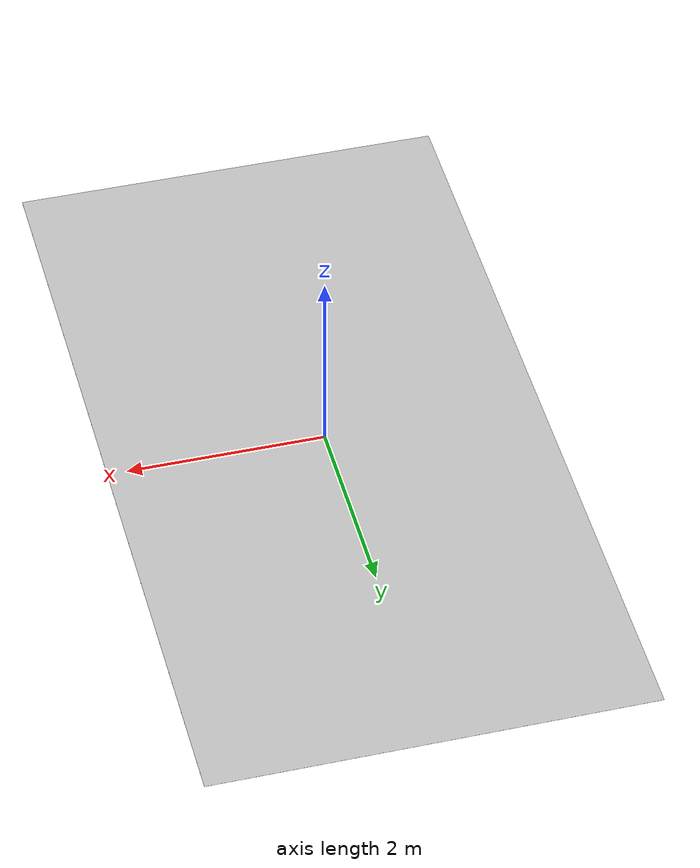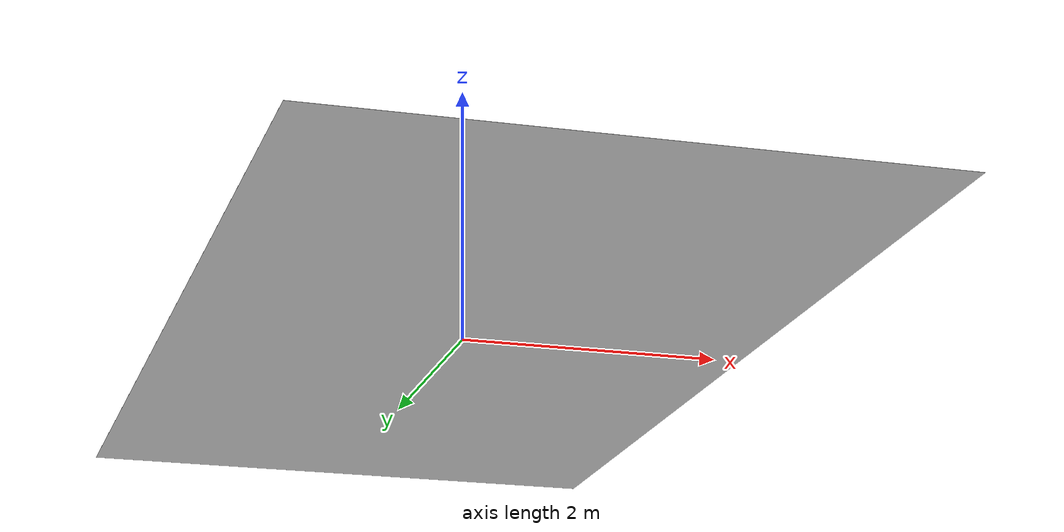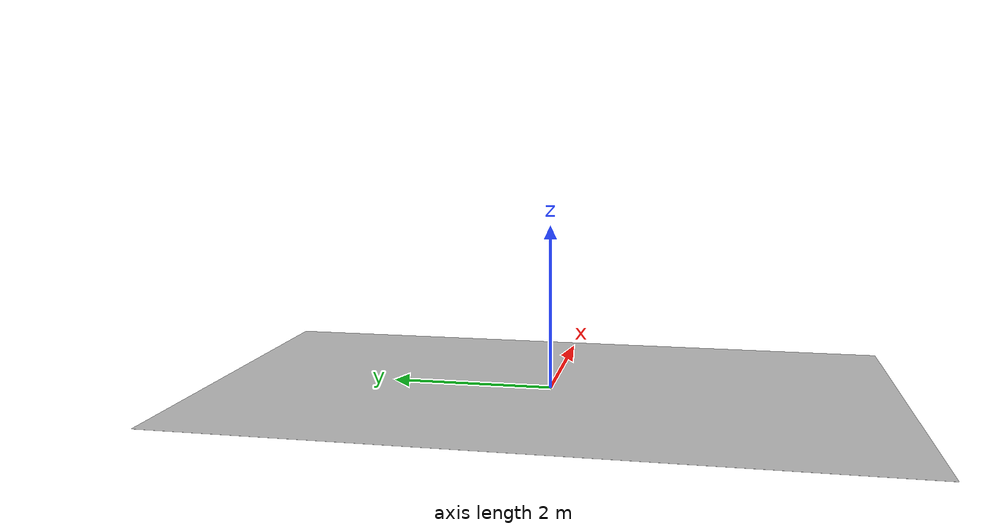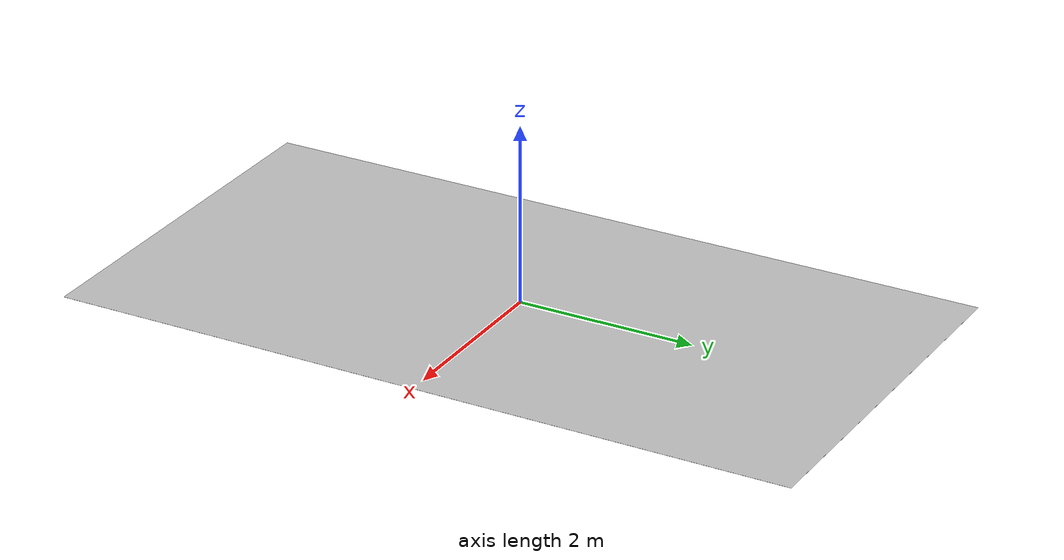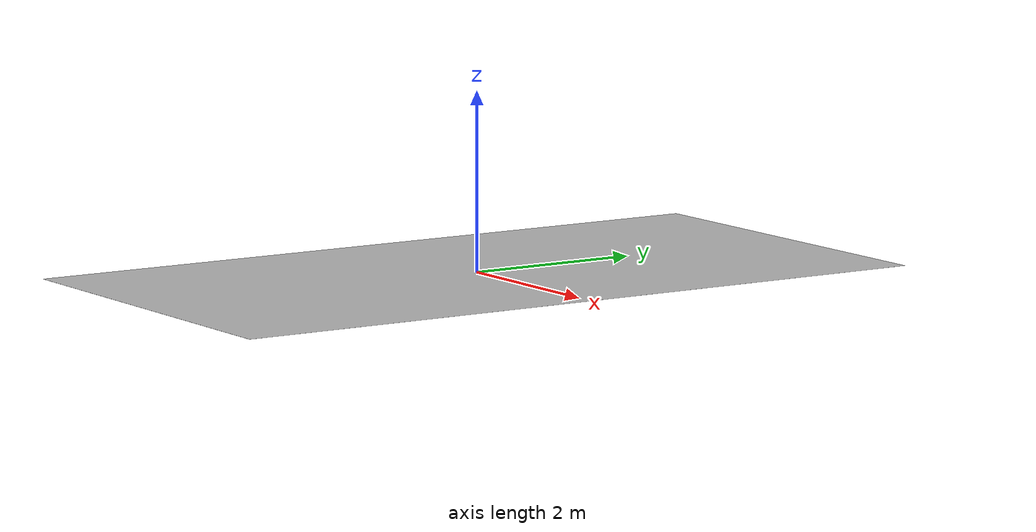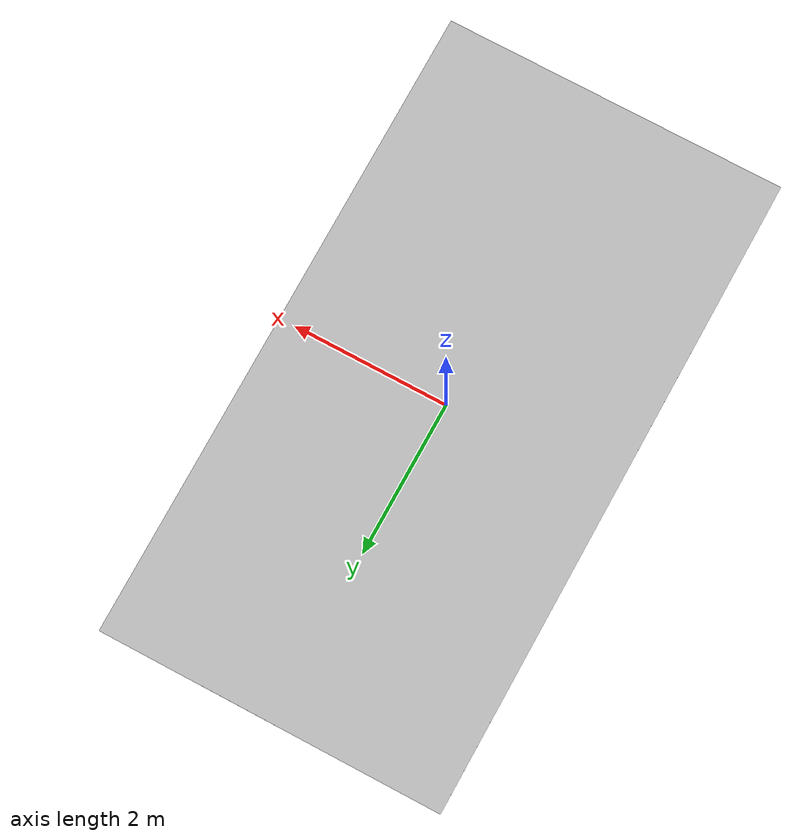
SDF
<?xml version="1.0" ?>
<sdf version="1.4">
  <model name="lab_floor">
    <static>1</static>
    <link name="link_lab_floor">
      <gravity>false</gravity>
      <visual name="visual_lab_floor">
        <geometry>
          <box>
            <size>4.4 8.4 0.001</size>
            <!-- SIZE OF THE OBJECT -->
          </box>
        </geometry>
        <material>
          <script>
	    <uri>model://lab_floor/material/scripts</uri>
	    <uri>model://lab_floor/material/textures</uri>
            <name>lab_floor</name>
          </script>
        </material>
      </visual>
      <collision name="collision">
        <geometry>
          <box>
            <size>4.4 8.4 0.001</size>
            <!-- SIZE OF THE OBJECT -->
          </box>
        </geometry>
      </collision>
    </link>
  </model>
</sdf>
